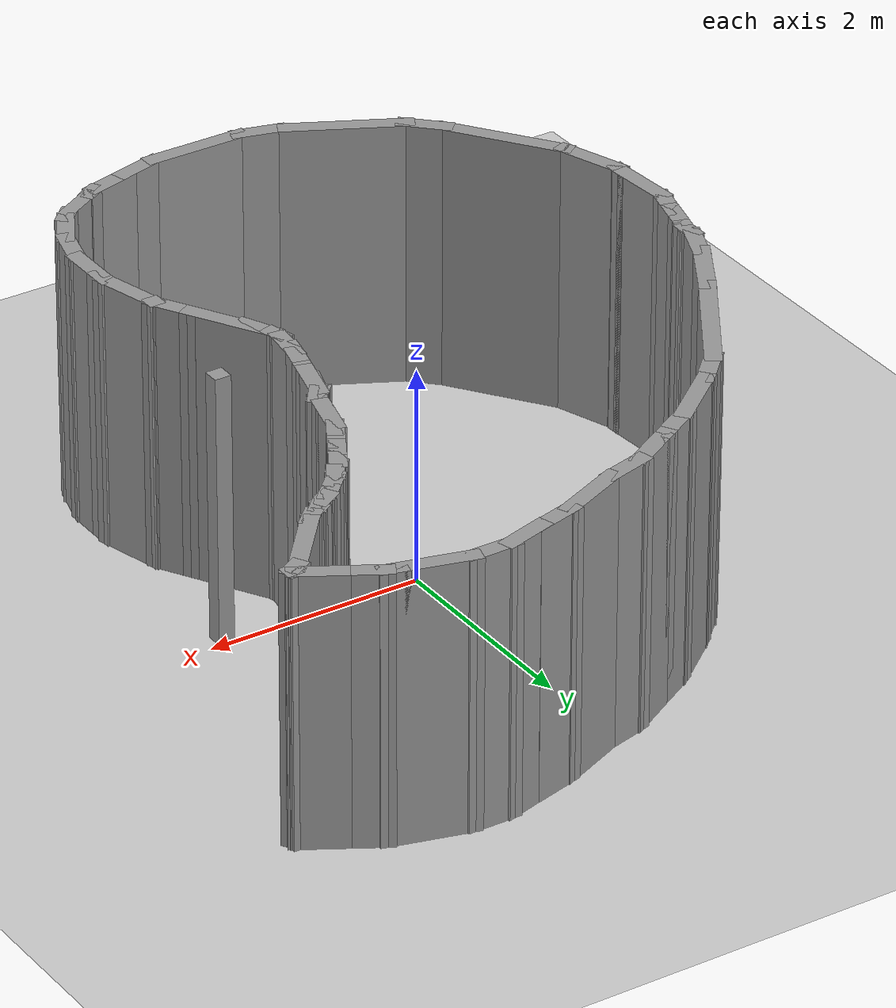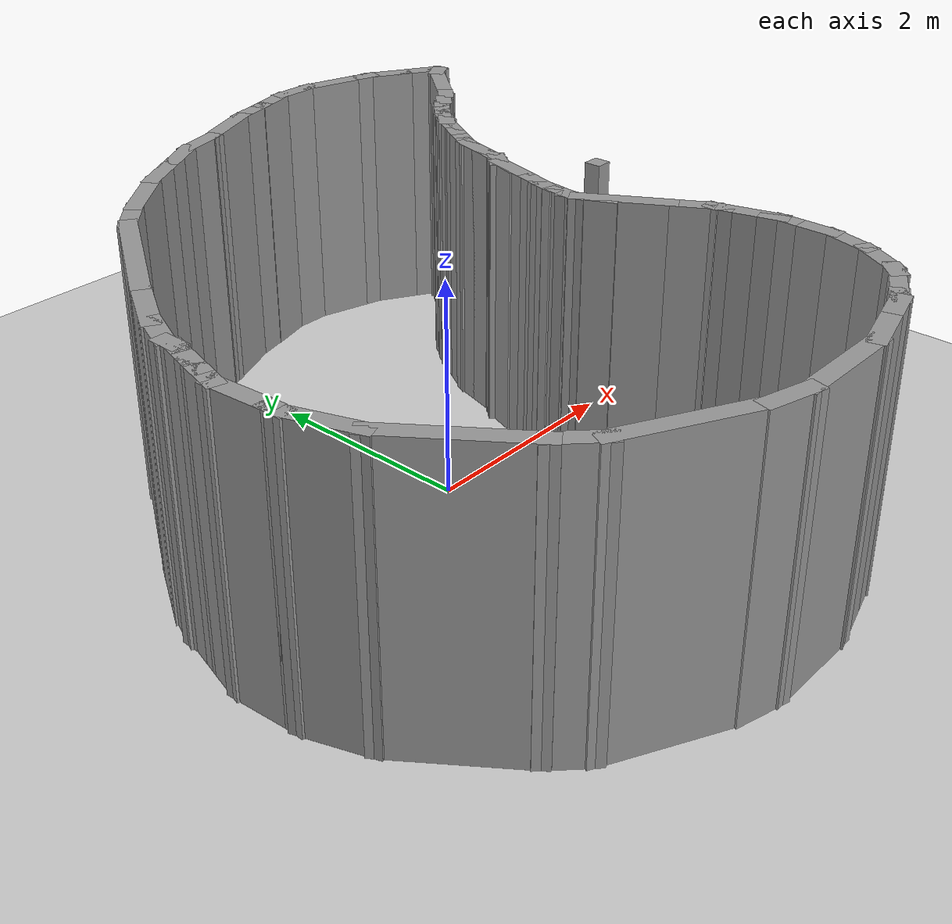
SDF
<sdf version="1.7">
 <world name="default">
  <model name="ground_plane">
   <static>1</static>
   <link name="link">
    <collision name="collision">
     <geometry><plane><normal>0 0 1</normal><size>100 100</size></plane></geometry>
     <surface>
      <contact><collide_bitmask>65535</collide_bitmask></contact>
      <friction><ode><mu>100</mu><mu2>50</mu2></ode></friction>
     </surface>
    </collision>
    <visual name="visual">
     <cast_shadows>0</cast_shadows>
     <geometry><plane><normal>0 0 1</normal><size>100 100</size></plane></geometry>
     <material>
      <script><uri>file://media/materials/scripts/gazebo.material</uri><name>Gazebo/Grey</name></script>
     </material>
    </visual>
   </link>
  </model>
  <model name="spool3">
   <pose>0.049449 -0.068809 0 0 -0 0</pose>
   <link name="Wall_424">
    <collision name="Wall_424_Collision">
     <geometry><box><size>0.15 0.15 2.5</size></box></geometry>
     <pose>0 0 1.25 0 -0 0</pose>
    </collision>
    <visual name="Wall_424_Visual">
     <pose>0 0 1.25 0 -0 0</pose>
     <geometry><box><size>0.15 0.15 2.5</size></box></geometry>
     <material>
      <script><uri>file://media/materials/scripts/gazebo.material</uri><name>Gazebo/Grey</name></script>
      <ambient>1 1 1 1</ambient>
     </material>
     <meta><layer>0</layer></meta>
    </visual>
    <pose>2.89913 2.86094 0 0 -0 0</pose>
   </link>
   <link name="Wall_425">
    <collision name="Wall_425_Collision">
     <geometry><box><size>0.25 0.15 2.5</size></box></geometry>
     <pose>0 0 1.25 0 -0 0</pose>
    </collision>
    <visual name="Wall_425_Visual">
     <pose>0 0 1.25 0 -0 0</pose>
     <geometry><box><size>0.25 0.15 2.5</size></box></geometry>
     <material>
      <script><uri>file://media/materials/scripts/gazebo.material</uri><name>Gazebo/Grey</name></script>
      <ambient>1 1 1 1</ambient>
     </material>
     <meta><layer>0</layer></meta>
    </visual>
    <pose>2.85583 2.83232 0 0 -0 -2.61799</pose>
   </link>
   <link name="Wall_426">
    <collision name="Wall_426_Collision">
     <geometry><box><size>0.829218 0.15 2.5</size></box></geometry>
     <pose>0 0 1.25 0 -0 0</pose>
    </collision>
    <visual name="Wall_426_Visual">
     <pose>0 0 1.25 0 -0 0</pose>
     <geometry><box><size>0.829218 0.15 2.5</size></box></geometry>
     <material>
      <script><uri>file://media/materials/scripts/gazebo.material</uri><name>Gazebo/Grey</name></script>
      <ambient>1 1 1 1</ambient>
     </material>
     <meta><layer>0</layer></meta>
    </visual>
    <pose>2.594 2.5507 0 0 -0 -2.26929</pose>
   </link>
   <link name="Wall_427">
    <collision name="Wall_427_Collision">
     <geometry><box><size>0.25 0.15 2.5</size></box></geometry>
     <pose>0 0 1.25 0 -0 0</pose>
    </collision>
    <visual name="Wall_427_Visual">
     <pose>0 0 1.25 0 -0 0</pose>
     <geometry><box><size>0.25 0.15 2.5</size></box></geometry>
     <material>
      <script><uri>file://media/materials/scripts/gazebo.material</uri><name>Gazebo/Grey</name></script>
      <ambient>1 1 1 1</ambient>
     </material>
     <meta><layer>0</layer></meta>
    </visual>
    <pose>2.34012 2.25511 0 0 -0 -2.35619</pose>
   </link>
   <link name="Wall_428">
    <collision name="Wall_428_Collision">
     <geometry><box><size>0.25 0.15 2.5</size></box></geometry>
     <pose>0 0 1.25 0 -0 0</pose>
    </collision>
    <visual name="Wall_428_Visual">
     <pose>0 0 1.25 0 -0 0</pose>
     <geometry><box><size>0.25 0.15 2.5</size></box></geometry>
     <material>
      <script><uri>file://media/materials/scripts/gazebo.material</uri><name>Gazebo/Grey</name></script>
      <ambient>1 1 1 1</ambient>
     </material>
     <meta><layer>0</layer></meta>
    </visual>
    <pose>2.26146 2.19475 0 0 -0 -2.61799</pose>
   </link>
   <link name="Wall_429">
    <collision name="Wall_429_Collision">
     <geometry><box><size>0.25 0.15 2.5</size></box></geometry>
     <pose>0 0 1.25 0 -0 0</pose>
    </collision>
    <visual name="Wall_429_Visual">
     <pose>0 0 1.25 0 -0 0</pose>
     <geometry><box><size>0.25 0.15 2.5</size></box></geometry>
     <material>
      <script><uri>file://media/materials/scripts/gazebo.material</uri><name>Gazebo/Grey</name></script>
      <ambient>1 1 1 1</ambient>
     </material>
     <meta><layer>0</layer></meta>
    </visual>
    <pose>2.18281 2.1344 0 0 -0 -2.35619</pose>
   </link>
   <link name="Wall_430">
    <collision name="Wall_430_Collision">
     <geometry><box><size>0.25 0.15 2.5</size></box></geometry>
     <pose>0 0 1.25 0 -0 0</pose>
    </collision>
    <visual name="Wall_430_Visual">
     <pose>0 0 1.25 0 -0 0</pose>
     <geometry><box><size>0.25 0.15 2.5</size></box></geometry>
     <material>
      <script><uri>file://media/materials/scripts/gazebo.material</uri><name>Gazebo/Grey</name></script>
      <ambient>1 1 1 1</ambient>
     </material>
     <meta><layer>0</layer></meta>
    </visual>
    <pose>2.10415 2.07404 0 0 -0 -2.61799</pose>
   </link>
   <link name="Wall_431">
    <collision name="Wall_431_Collision">
     <geometry><box><size>0.25 0.15 2.5</size></box></geometry>
     <pose>0 0 1.25 0 -0 0</pose>
    </collision>
    <visual name="Wall_431_Visual">
     <pose>0 0 1.25 0 -0 0</pose>
     <geometry><box><size>0.25 0.15 2.5</size></box></geometry>
     <material>
      <script><uri>file://media/materials/scripts/gazebo.material</uri><name>Gazebo/Grey</name></script>
      <ambient>1 1 1 1</ambient>
     </material>
     <meta><layer>0</layer></meta>
    </visual>
    <pose>2.02549 2.01369 0 0 -0 -2.35619</pose>
   </link>
   <link name="Wall_432">
    <collision name="Wall_432_Collision">
     <geometry><box><size>0.25 0.15 2.5</size></box></geometry>
     <pose>0 0 1.25 0 -0 0</pose>
    </collision>
    <visual name="Wall_432_Visual">
     <pose>0 0 1.25 0 -0 0</pose>
     <geometry><box><size>0.25 0.15 2.5</size></box></geometry>
     <material>
      <script><uri>file://media/materials/scripts/gazebo.material</uri><name>Gazebo/Grey</name></script>
      <ambient>1 1 1 1</ambient>
     </material>
     <meta><layer>0</layer></meta>
    </visual>
    <pose>1.95478 1.94298 0 0 -0 -2.35619</pose>
   </link>
   <link name="Wall_433">
    <collision name="Wall_433_Collision">
     <geometry><box><size>0.25 0.15 2.5</size></box></geometry>
     <pose>0 0 1.25 0 -0 0</pose>
    </collision>
    <visual name="Wall_433_Visual">
     <pose>0 0 1.25 0 -0 0</pose>
     <geometry><box><size>0.25 0.15 2.5</size></box></geometry>
     <material>
      <script><uri>file://media/materials/scripts/gazebo.material</uri><name>Gazebo/Grey</name></script>
      <ambient>1 1 1 1</ambient>
     </material>
     <meta><layer>0</layer></meta>
    </visual>
    <pose>1.88407 1.87227 0 0 -0 -2.35619</pose>
   </link>
   <link name="Wall_434">
    <collision name="Wall_434_Collision">
     <geometry><box><size>0.25 0.15 2.5</size></box></geometry>
     <pose>0 0 1.25 0 -0 0</pose>
    </collision>
    <visual name="Wall_434_Visual">
     <pose>0 0 1.25 0 -0 0</pose>
     <geometry><box><size>0.25 0.15 2.5</size></box></geometry>
     <material>
      <script><uri>file://media/materials/scripts/gazebo.material</uri><name>Gazebo/Grey</name></script>
      <ambient>1 1 1 1</ambient>
     </material>
     <meta><layer>0</layer></meta>
    </visual>
    <pose>1.82372 1.79361 0 0 -0 -2.0944</pose>
   </link>
   <link name="Wall_435">
    <collision name="Wall_435_Collision">
     <geometry><box><size>0.25 0.15 2.5</size></box></geometry>
     <pose>0 0 1.25 0 -0 0</pose>
    </collision>
    <visual name="Wall_435_Visual">
     <pose>0 0 1.25 0 -0 0</pose>
     <geometry><box><size>0.25 0.15 2.5</size></box></geometry>
     <material>
      <script><uri>file://media/materials/scripts/gazebo.material</uri><name>Gazebo/Grey</name></script>
      <ambient>1 1 1 1</ambient>
     </material>
     <meta><layer>0</layer></meta>
    </visual>
    <pose>1.76336 1.71495 0 0 -0 -2.35619</pose>
   </link>
   <link name="Wall_436">
    <collision name="Wall_436_Collision">
     <geometry><box><size>0.25 0.15 2.5</size></box></geometry>
     <pose>0 0 1.25 0 -0 0</pose>
    </collision>
    <visual name="Wall_436_Visual">
     <pose>0 0 1.25 0 -0 0</pose>
     <geometry><box><size>0.25 0.15 2.5</size></box></geometry>
     <material>
      <script><uri>file://media/materials/scripts/gazebo.material</uri><name>Gazebo/Grey</name></script>
      <ambient>1 1 1 1</ambient>
     </material>
     <meta><layer>0</layer></meta>
    </visual>
    <pose>1.70301 1.6363 0 0 -0 -2.0944</pose>
   </link>
   <link name="Wall_437">
    <collision name="Wall_437_Collision">
     <geometry><box><size>0.25 0.15 2.5</size></box></geometry>
     <pose>0 0 1.25 0 -0 0</pose>
    </collision>
    <visual name="Wall_437_Visual">
     <pose>0 0 1.25 0 -0 0</pose>
     <geometry><box><size>0.25 0.15 2.5</size></box></geometry>
     <material>
      <script><uri>file://media/materials/scripts/gazebo.material</uri><name>Gazebo/Grey</name></script>
      <ambient>1 1 1 1</ambient>
     </material>
     <meta><layer>0</layer></meta>
    </visual>
    <pose>1.65301 1.54969 0 0 -0 -2.0944</pose>
   </link>
   <link name="Wall_438">
    <collision name="Wall_438_Collision">
     <geometry><box><size>0.25 0.15 2.5</size></box></geometry>
     <pose>0 0 1.25 0 -0 0</pose>
    </collision>
    <visual name="Wall_438_Visual">
     <pose>0 0 1.25 0 -0 0</pose>
     <geometry><box><size>0.25 0.15 2.5</size></box></geometry>
     <material>
      <script><uri>file://media/materials/scripts/gazebo.material</uri><name>Gazebo/Grey</name></script>
      <ambient>1 1 1 1</ambient>
     </material>
     <meta><layer>0</layer></meta>
    </visual>
    <pose>1.60301 1.46309 0 0 -0 -2.0944</pose>
   </link>
   <link name="Wall_439">
    <collision name="Wall_439_Collision">
     <geometry><box><size>0.25 0.15 2.5</size></box></geometry>
     <pose>0 0 1.25 0 -0 0</pose>
    </collision>
    <visual name="Wall_439_Visual">
     <pose>0 0 1.25 0 -0 0</pose>
     <geometry><box><size>0.25 0.15 2.5</size></box></geometry>
     <material>
      <script><uri>file://media/materials/scripts/gazebo.material</uri><name>Gazebo/Grey</name></script>
      <ambient>1 1 1 1</ambient>
     </material>
     <meta><layer>0</layer></meta>
    </visual>
    <pose>1.55301 1.37649 0 0 -0 -2.0944</pose>
   </link>
   <link name="Wall_440">
    <collision name="Wall_440_Collision">
     <geometry><box><size>0.25 0.15 2.5</size></box></geometry>
     <pose>0 0 1.25 0 -0 0</pose>
    </collision>
    <visual name="Wall_440_Visual">
     <pose>0 0 1.25 0 -0 0</pose>
     <geometry><box><size>0.25 0.15 2.5</size></box></geometry>
     <material>
      <script><uri>file://media/materials/scripts/gazebo.material</uri><name>Gazebo/Grey</name></script>
      <ambient>1 1 1 1</ambient>
     </material>
     <meta><layer>0</layer></meta>
    </visual>
    <pose>1.50301 1.28989 0 0 -0 -2.0944</pose>
   </link>
   <link name="Wall_441">
    <collision name="Wall_441_Collision">
     <geometry><box><size>0.25 0.15 2.5</size></box></geometry>
     <pose>0 0 1.25 0 -0 0</pose>
    </collision>
    <visual name="Wall_441_Visual">
     <pose>0 0 1.25 0 -0 0</pose>
     <geometry><box><size>0.25 0.15 2.5</size></box></geometry>
     <material>
      <script><uri>file://media/materials/scripts/gazebo.material</uri><name>Gazebo/Grey</name></script>
      <ambient>1 1 1 1</ambient>
     </material>
     <meta><layer>0</layer></meta>
    </visual>
    <pose>1.45301 1.20328 0 0 -0 -2.0944</pose>
   </link>
   <link name="Wall_442">
    <collision name="Wall_442_Collision">
     <geometry><box><size>0.5 0.15 2.5</size></box></geometry>
     <pose>0 0 1.25 0 -0 0</pose>
    </collision>
    <visual name="Wall_442_Visual">
     <pose>0 0 1.25 0 -0 0</pose>
     <geometry><box><size>0.5 0.15 2.5</size></box></geometry>
     <material>
      <script><uri>file://media/materials/scripts/gazebo.material</uri><name>Gazebo/Grey</name></script>
      <ambient>1 1 1 1</ambient>
     </material>
     <meta><layer>0</layer></meta>
    </visual>
    <pose>1.38271 0.990946 0 0 -0 -1.8326</pose>
   </link>
   <link name="Wall_443">
    <collision name="Wall_443_Collision">
     <geometry><box><size>0.5 0.15 2.5</size></box></geometry>
     <pose>0 0 1.25 0 -0 0</pose>
    </collision>
    <visual name="Wall_443_Visual">
     <pose>0 0 1.25 0 -0 0</pose>
     <geometry><box><size>0.5 0.15 2.5</size></box></geometry>
     <material>
      <script><uri>file://media/materials/scripts/gazebo.material</uri><name>Gazebo/Grey</name></script>
      <ambient>1 1 1 1</ambient>
     </material>
     <meta><layer>0</layer></meta>
    </visual>
    <pose>1.38271 0.990946 0 0 -0 1.309</pose>
   </link>
   <link name="Wall_444">
    <collision name="Wall_444_Collision">
     <geometry><box><size>0.5 0.15 2.5</size></box></geometry>
     <pose>0 0 1.25 0 -0 0</pose>
    </collision>
    <visual name="Wall_444_Visual">
     <pose>0 0 1.25 0 -0 0</pose>
     <geometry><box><size>0.5 0.15 2.5</size></box></geometry>
     <material>
      <script><uri>file://media/materials/scripts/gazebo.material</uri><name>Gazebo/Grey</name></script>
      <ambient>1 1 1 1</ambient>
     </material>
     <meta><layer>0</layer></meta>
    </visual>
    <pose>1.38271 0.990946 0 0 -0 -1.8326</pose>
   </link>
   <link name="Wall_445">
    <collision name="Wall_445_Collision">
     <geometry><box><size>0.25 0.15 2.5</size></box></geometry>
     <pose>0 0 1.25 0 -0 0</pose>
    </collision>
    <visual name="Wall_445_Visual">
     <pose>0 0 1.25 0 -0 0</pose>
     <geometry><box><size>0.25 0.15 2.5</size></box></geometry>
     <material>
      <script><uri>file://media/materials/scripts/gazebo.material</uri><name>Gazebo/Grey</name></script>
      <ambient>1 1 1 1</ambient>
     </material>
     <meta><layer>0</layer></meta>
    </visual>
    <pose>1.32448 0.773612 0 0 -0 -1.8326</pose>
   </link>
   <link name="Wall_446">
    <collision name="Wall_446_Collision">
     <geometry><box><size>0.290924 0.15 2.5</size></box></geometry>
     <pose>0 0 1.25 0 -0 0</pose>
    </collision>
    <visual name="Wall_446_Visual">
     <pose>0 0 1.25 0 -0 0</pose>
     <geometry><box><size>0.290924 0.15 2.5</size></box></geometry>
     <material>
      <script><uri>file://media/materials/scripts/gazebo.material</uri><name>Gazebo/Grey</name></script>
      <ambient>1 1 1 1</ambient>
     </material>
     <meta><layer>0</layer></meta>
    </visual>
    <pose>1.26544 0.672025 0 0 -0 -2.28393</pose>
   </link>
   <link name="Wall_447">
    <collision name="Wall_447_Collision">
     <geometry><box><size>0.3 0.15 2.5</size></box></geometry>
     <pose>0 0 1.25 0 -0 0</pose>
    </collision>
    <visual name="Wall_447_Visual">
     <pose>0 0 1.25 0 -0 0</pose>
     <geometry><box><size>0.3 0.15 2.5</size></box></geometry>
     <material>
      <script><uri>file://media/materials/scripts/gazebo.material</uri><name>Gazebo/Grey</name></script>
      <ambient>1 1 1 1</ambient>
     </material>
     <meta><layer>0</layer></meta>
    </visual>
    <pose>1.27238 0.671766 0 0 -0 0.785398</pose>
   </link>
   <link name="Wall_448">
    <collision name="Wall_448_Collision">
     <geometry><box><size>0.271459 0.15 2.5</size></box></geometry>
     <pose>0 0 1.25 0 -0 0</pose>
    </collision>
    <visual name="Wall_448_Visual">
     <pose>0 0 1.25 0 -0 0</pose>
     <geometry><box><size>0.271459 0.15 2.5</size></box></geometry>
     <material>
      <script><uri>file://media/materials/scripts/gazebo.material</uri><name>Gazebo/Grey</name></script>
      <ambient>1 1 1 1</ambient>
     </material>
     <meta><layer>0</layer></meta>
    </visual>
    <pose>1.28909 0.676128 0 0 -0 -2.21188</pose>
   </link>
   <link name="Wall_449">
    <collision name="Wall_449_Collision">
     <geometry><box><size>0.374065 0.15 2.5</size></box></geometry>
     <pose>0 0 1.25 0 -0 0</pose>
    </collision>
    <visual name="Wall_449_Visual">
     <pose>0 0 1.25 0 -0 0</pose>
     <geometry><box><size>0.374065 0.15 2.5</size></box></geometry>
     <material>
      <script><uri>file://media/materials/scripts/gazebo.material</uri><name>Gazebo/Grey</name></script>
      <ambient>1 1 1 1</ambient>
     </material>
     <meta><layer>0</layer></meta>
    </visual>
    <pose>1.21102 0.518038 0 0 -0 -1.89287</pose>
   </link>
   <link name="Wall_454">
    <collision name="Wall_454_Collision">
     <geometry><box><size>0.15 0.15 2.5</size></box></geometry>
     <pose>0 0 1.25 0 -0 0</pose>
    </collision>
    <visual name="Wall_454_Visual">
     <pose>0 0 1.25 0 -0 0</pose>
     <geometry><box><size>0.15 0.15 2.5</size></box></geometry>
     <material>
      <script><uri>file://media/materials/scripts/gazebo.material</uri><name>Gazebo/Grey</name></script>
      <ambient>1 1 1 1</ambient>
     </material>
     <meta><layer>0</layer></meta>
    </visual>
    <pose>1.78692 -0.022189 0 0 -0 0</pose>
   </link>
   <link name="Wall_458">
    <collision name="Wall_458_Collision">
     <geometry><box><size>0.41268 0.15 2.5</size></box></geometry>
     <pose>0 0 1.25 0 -0 0</pose>
    </collision>
    <visual name="Wall_458_Visual">
     <pose>0 0 1.25 0 -0 0</pose>
     <geometry><box><size>0.41268 0.15 2.5</size></box></geometry>
     <material>
      <script><uri>file://media/materials/scripts/gazebo.material</uri><name>Gazebo/Grey</name></script>
      <ambient>1 1 1 1</ambient>
     </material>
     <meta><layer>0</layer></meta>
    </visual>
    <pose>1.11426 -0.498827 0 0 -0 2.00946</pose>
   </link>
   <link name="Wall_459">
    <collision name="Wall_459_Collision">
     <geometry><box><size>0.891691 0.15 2.5</size></box></geometry>
     <pose>0 0 1.25 0 -0 0</pose>
    </collision>
    <visual name="Wall_459_Visual">
     <pose>0 0 1.25 0 -0 0</pose>
     <geometry><box><size>0.891691 0.15 2.5</size></box></geometry>
     <material>
      <script><uri>file://media/materials/scripts/gazebo.material</uri><name>Gazebo/Grey</name></script>
      <ambient>1 1 1 1</ambient>
     </material>
     <meta><layer>0</layer></meta>
    </visual>
    <pose>1.24574 -0.700011 0 0 -0 -1.04144</pose>
   </link>
   <link name="Wall_460">
    <collision name="Wall_460_Collision">
     <geometry><box><size>0.5 0.15 2.5</size></box></geometry>
     <pose>0 0 1.25 0 -0 0</pose>
    </collision>
    <visual name="Wall_460_Visual">
     <pose>0 0 1.25 0 -0 0</pose>
     <geometry><box><size>0.5 0.15 2.5</size></box></geometry>
     <material>
      <script><uri>file://media/materials/scripts/gazebo.material</uri><name>Gazebo/Grey</name></script>
      <ambient>1 1 1 1</ambient>
     </material>
     <meta><layer>0</layer></meta>
    </visual>
    <pose>1.52051 -1.17165 0 0 -0 -1.0472</pose>
   </link>
   <link name="Wall_461">
    <collision name="Wall_461_Collision">
     <geometry><box><size>0.15 0.15 2.5</size></box></geometry>
     <pose>0 0 1.25 0 -0 0</pose>
    </collision>
    <visual name="Wall_461_Visual">
     <pose>0 0 1.25 0 -0 0</pose>
     <geometry><box><size>0.15 0.15 2.5</size></box></geometry>
     <material>
      <script><uri>file://media/materials/scripts/gazebo.material</uri><name>Gazebo/Grey</name></script>
      <ambient>1 1 1 1</ambient>
     </material>
     <meta><layer>0</layer></meta>
    </visual>
    <pose>1.60801 -1.32321 0 0 -0 0</pose>
   </link>
   <link name="Wall_462">
    <collision name="Wall_462_Collision">
     <geometry><box><size>0.25 0.15 2.5</size></box></geometry>
     <pose>0 0 1.25 0 -0 0</pose>
    </collision>
    <visual name="Wall_462_Visual">
     <pose>0 0 1.25 0 -0 0</pose>
     <geometry><box><size>0.25 0.15 2.5</size></box></geometry>
     <material>
      <script><uri>file://media/materials/scripts/gazebo.material</uri><name>Gazebo/Grey</name></script>
      <ambient>1 1 1 1</ambient>
     </material>
     <meta><layer>0</layer></meta>
    </visual>
    <pose>1.62095 -1.3715 0 0 -0 -1.309</pose>
   </link>
   <link name="Wall_463">
    <collision name="Wall_463_Collision">
     <geometry><box><size>0.5 0.15 2.5</size></box></geometry>
     <pose>0 0 1.25 0 -0 0</pose>
    </collision>
    <visual name="Wall_463_Visual">
     <pose>0 0 1.25 0 -0 0</pose>
     <geometry><box><size>0.5 0.15 2.5</size></box></geometry>
     <material>
      <script><uri>file://media/materials/scripts/gazebo.material</uri><name>Gazebo/Grey</name></script>
      <ambient>1 1 1 1</ambient>
     </material>
     <meta><layer>0</layer></meta>
    </visual>
    <pose>1.67919 -1.58884 0 0 -0 -1.309</pose>
   </link>
   <link name="Wall_464">
    <collision name="Wall_464_Collision">
     <geometry><box><size>0.25 0.15 2.5</size></box></geometry>
     <pose>0 0 1.25 0 -0 0</pose>
    </collision>
    <visual name="Wall_464_Visual">
     <pose>0 0 1.25 0 -0 0</pose>
     <geometry><box><size>0.25 0.15 2.5</size></box></geometry>
     <material>
      <script><uri>file://media/materials/scripts/gazebo.material</uri><name>Gazebo/Grey</name></script>
      <ambient>1 1 1 1</ambient>
     </material>
     <meta><layer>0</layer></meta>
    </visual>
    <pose>1.73742 -1.80617 0 0 -0 -1.309</pose>
   </link>
   <link name="Wall_465">
    <collision name="Wall_465_Collision">
     <geometry><box><size>0.25 0.15 2.5</size></box></geometry>
     <pose>0 0 1.25 0 -0 0</pose>
    </collision>
    <visual name="Wall_465_Visual">
     <pose>0 0 1.25 0 -0 0</pose>
     <geometry><box><size>0.25 0.15 2.5</size></box></geometry>
     <material>
      <script><uri>file://media/materials/scripts/gazebo.material</uri><name>Gazebo/Grey</name></script>
      <ambient>1 1 1 1</ambient>
     </material>
     <meta><layer>0</layer></meta>
    </visual>
    <pose>1.75036 -1.90447 0 0 -0 -1.5708</pose>
   </link>
   <link name="Wall_466">
    <collision name="Wall_466_Collision">
     <geometry><box><size>0.5 0.15 2.5</size></box></geometry>
     <pose>0 0 1.25 0 -0 0</pose>
    </collision>
    <visual name="Wall_466_Visual">
     <pose>0 0 1.25 0 -0 0</pose>
     <geometry><box><size>0.5 0.15 2.5</size></box></geometry>
     <material>
      <script><uri>file://media/materials/scripts/gazebo.material</uri><name>Gazebo/Grey</name></script>
      <ambient>1 1 1 1</ambient>
     </material>
     <meta><layer>0</layer></meta>
    </visual>
    <pose>1.75036 -2.12947 0 0 -0 -1.5708</pose>
   </link>
   <link name="Wall_467">
    <collision name="Wall_467_Collision">
     <geometry><box><size>0.5 0.15 2.5</size></box></geometry>
     <pose>0 0 1.25 0 -0 0</pose>
    </collision>
    <visual name="Wall_467_Visual">
     <pose>0 0 1.25 0 -0 0</pose>
     <geometry><box><size>0.5 0.15 2.5</size></box></geometry>
     <material>
      <script><uri>file://media/materials/scripts/gazebo.material</uri><name>Gazebo/Grey</name></script>
      <ambient>1 1 1 1</ambient>
     </material>
     <meta><layer>0</layer></meta>
    </visual>
    <pose>1.70507 -2.4735 0 0 -0 -1.8326</pose>
   </link>
   <link name="Wall_468">
    <collision name="Wall_468_Collision">
     <geometry><box><size>0.5 0.15 2.5</size></box></geometry>
     <pose>0 0 1.25 0 -0 0</pose>
    </collision>
    <visual name="Wall_468_Visual">
     <pose>0 0 1.25 0 -0 0</pose>
     <geometry><box><size>0.5 0.15 2.5</size></box></geometry>
     <material>
      <script><uri>file://media/materials/scripts/gazebo.material</uri><name>Gazebo/Grey</name></script>
      <ambient>1 1 1 1</ambient>
     </material>
     <meta><layer>0</layer></meta>
    </visual>
    <pose>1.57227 -2.7941 0 0 -0 -2.0944</pose>
   </link>
   <link name="Wall_469">
    <collision name="Wall_469_Collision">
     <geometry><box><size>0.25 0.15 2.5</size></box></geometry>
     <pose>0 0 1.25 0 -0 0</pose>
    </collision>
    <visual name="Wall_469_Visual">
     <pose>0 0 1.25 0 -0 0</pose>
     <geometry><box><size>0.25 0.15 2.5</size></box></geometry>
     <material>
      <script><uri>file://media/materials/scripts/gazebo.material</uri><name>Gazebo/Grey</name></script>
      <ambient>1 1 1 1</ambient>
     </material>
     <meta><layer>0</layer></meta>
    </visual>
    <pose>1.44938 -2.98079 0 0 -0 -2.35979</pose>
   </link>
   <link name="Wall_470">
    <collision name="Wall_470_Collision">
     <geometry><box><size>0.480151 0.13 2.5</size></box></geometry>
     <pose>0 0 1.25 0 -0 0</pose>
    </collision>
    <visual name="Wall_470_Visual">
     <pose>0 0 1.25 0 -0 0</pose>
     <geometry><box><size>0.480151 0.13 2.5</size></box></geometry>
     <material>
      <script><uri>file://media/materials/scripts/gazebo.material</uri><name>Gazebo/Grey</name></script>
      <ambient>1 1 1 1</ambient>
     </material>
     <meta><layer>0</layer></meta>
    </visual>
    <pose>1.26249 -3.10343 0 0 -0 -2.61784</pose>
   </link>
   <link name="Wall_471">
    <collision name="Wall_471_Collision">
     <geometry><box><size>0.25 0.15 2.5</size></box></geometry>
     <pose>0 0 1.25 0 -0 0</pose>
    </collision>
    <visual name="Wall_471_Visual">
     <pose>0 0 1.25 0 -0 0</pose>
     <geometry><box><size>0.25 0.15 2.5</size></box></geometry>
     <material>
      <script><uri>file://media/materials/scripts/gazebo.material</uri><name>Gazebo/Grey</name></script>
      <ambient>1 1 1 1</ambient>
     </material>
     <meta><layer>0</layer></meta>
    </visual>
    <pose>1.06767 -3.21615 0 0 -0 -2.61443</pose>
   </link>
   <link name="Wall_472">
    <collision name="Wall_472_Collision">
     <geometry><box><size>0.5 0.15 2.5</size></box></geometry>
     <pose>0 0 1.25 0 -0 0</pose>
    </collision>
    <visual name="Wall_472_Visual">
     <pose>0 0 1.25 0 -0 0</pose>
     <geometry><box><size>0.5 0.15 2.5</size></box></geometry>
     <material>
      <script><uri>file://media/materials/scripts/gazebo.material</uri><name>Gazebo/Grey</name></script>
      <ambient>1 1 1 1</ambient>
     </material>
     <meta><layer>0</layer></meta>
    </visual>
    <pose>0.855315 -3.28665 0 0 -0 -2.87979</pose>
   </link>
   <link name="Wall_473">
    <collision name="Wall_473_Collision">
     <geometry><box><size>0.5 0.15 2.5</size></box></geometry>
     <pose>0 0 1.25 0 -0 0</pose>
    </collision>
    <visual name="Wall_473_Visual">
     <pose>0 0 1.25 0 -0 0</pose>
     <geometry><box><size>0.5 0.15 2.5</size></box></geometry>
     <material>
      <script><uri>file://media/materials/scripts/gazebo.material</uri><name>Gazebo/Grey</name></script>
      <ambient>1 1 1 1</ambient>
     </material>
     <meta><layer>0</layer></meta>
    </visual>
    <pose>0.517241 -3.37724 0 0 -0 -2.87979</pose>
   </link>
   <link name="Wall_474">
    <collision name="Wall_474_Collision">
     <geometry><box><size>1 0.15 2.5</size></box></geometry>
     <pose>0 0 1.25 0 -0 0</pose>
    </collision>
    <visual name="Wall_474_Visual">
     <pose>0 0 1.25 0 -0 0</pose>
     <geometry><box><size>1 0.15 2.5</size></box></geometry>
     <material>
      <script><uri>file://media/materials/scripts/gazebo.material</uri><name>Gazebo/Grey</name></script>
      <ambient>1 1 1 1</ambient>
     </material>
     <meta><layer>0</layer></meta>
    </visual>
    <pose>-0.076796 -3.42253 0 0 -0 3.14159</pose>
   </link>
   <link name="Wall_475">
    <collision name="Wall_475_Collision">
     <geometry><box><size>0.5 0.15 2.5</size></box></geometry>
     <pose>0 0 1.25 0 -0 0</pose>
    </collision>
    <visual name="Wall_475_Visual">
     <pose>0 0 1.25 0 -0 0</pose>
     <geometry><box><size>0.5 0.15 2.5</size></box></geometry>
     <material>
      <script><uri>file://media/materials/scripts/gazebo.material</uri><name>Gazebo/Grey</name></script>
      <ambient>1 1 1 1</ambient>
     </material>
     <meta><layer>0</layer></meta>
    </visual>
    <pose>-0.670833 -3.37724 0 0 -0 2.87979</pose>
   </link>
   <link name="Wall_513">
    <collision name="Wall_513_Collision">
     <geometry><box><size>1.17668 0.15 2.5</size></box></geometry>
     <pose>0 0 1.25 0 -0 0</pose>
    </collision>
    <visual name="Wall_513_Visual">
     <pose>0 0 1.25 0 -0 0</pose>
     <geometry><box><size>1.17668 0.15 2.5</size></box></geometry>
     <material>
      <script><uri>file://media/materials/scripts/gazebo.material</uri><name>Gazebo/Grey</name></script>
      <ambient>1 1 1 1</ambient>
     </material>
     <meta><layer>0</layer></meta>
    </visual>
    <pose>-1.35733 -3.0644 0 0 -0 2.66717</pose>
   </link>
   <link name="Wall_514">
    <collision name="Wall_514_Collision">
     <geometry><box><size>0.5 0.15 2.5</size></box></geometry>
     <pose>0 0 1.25 0 -0 0</pose>
    </collision>
    <visual name="Wall_514_Visual">
     <pose>0 0 1.25 0 -0 0</pose>
     <geometry><box><size>0.5 0.15 2.5</size></box></geometry>
     <material>
      <script><uri>file://media/materials/scripts/gazebo.material</uri><name>Gazebo/Grey</name></script>
      <ambient>1 1 1 1</ambient>
     </material>
     <meta><layer>0</layer></meta>
    </visual>
    <pose>-1.92942 -2.71444 0 0 -0 2.35619</pose>
   </link>
   <link name="Wall_515">
    <collision name="Wall_515_Collision">
     <geometry><box><size>1.23829 0.15 2.5</size></box></geometry>
     <pose>0 0 1.25 0 -0 0</pose>
    </collision>
    <visual name="Wall_515_Visual">
     <pose>0 0 1.25 0 -0 0</pose>
     <geometry><box><size>1.23829 0.15 2.5</size></box></geometry>
     <material>
      <script><uri>file://media/materials/scripts/gazebo.material</uri><name>Gazebo/Grey</name></script>
      <ambient>1 1 1 1</ambient>
     </material>
     <meta><layer>0</layer></meta>
    </visual>
    <pose>-2.37092 -2.14896 0 0 -0 2.19439</pose>
   </link>
   <link name="Wall_517">
    <collision name="Wall_517_Collision">
     <geometry><box><size>0.15 0.15 2.5</size></box></geometry>
     <pose>0 0 1.25 0 -0 0</pose>
    </collision>
    <visual name="Wall_517_Visual">
     <pose>0 0 1.25 0 -0 0</pose>
     <geometry><box><size>0.15 0.15 2.5</size></box></geometry>
     <material>
      <script><uri>file://media/materials/scripts/gazebo.material</uri><name>Gazebo/Grey</name></script>
      <ambient>1 1 1 1</ambient>
     </material>
     <meta><layer>0</layer></meta>
    </visual>
    <pose>-2.87268 -1.07983 0 0 -0 0</pose>
   </link>
   <link name="Wall_519">
    <collision name="Wall_519_Collision">
     <geometry><box><size>0.463786 0.15 2.5</size></box></geometry>
     <pose>0 0 1.25 0 -0 0</pose>
    </collision>
    <visual name="Wall_519_Visual">
     <pose>0 0 1.25 0 -0 0</pose>
     <geometry><box><size>0.463786 0.15 2.5</size></box></geometry>
     <material>
      <script><uri>file://media/materials/scripts/gazebo.material</uri><name>Gazebo/Grey</name></script>
      <ambient>1 1 1 1</ambient>
     </material>
     <meta><layer>0</layer></meta>
    </visual>
    <pose>-2.69479 0.234448 0 0 -0 1.1808</pose>
   </link>
   <link name="Wall_520">
    <collision name="Wall_520_Collision">
     <geometry><box><size>0.743321 0.15 2.5</size></box></geometry>
     <pose>0 0 1.25 0 -0 0</pose>
    </collision>
    <visual name="Wall_520_Visual">
     <pose>0 0 1.25 0 -0 0</pose>
     <geometry><box><size>0.743321 0.15 2.5</size></box></geometry>
     <material>
      <script><uri>file://media/materials/scripts/gazebo.material</uri><name>Gazebo/Grey</name></script>
      <ambient>1 1 1 1</ambient>
     </material>
     <meta><layer>0</layer></meta>
    </visual>
    <pose>-2.49529 0.635843 0 0 -0 1.04295</pose>
   </link>
   <link name="Wall_523">
    <collision name="Wall_523_Collision">
     <geometry><box><size>1.33351 0.15 2.5</size></box></geometry>
     <pose>0 0 1.25 0 -0 0</pose>
    </collision>
    <visual name="Wall_523_Visual">
     <pose>0 0 1.25 0 -0 0</pose>
     <geometry><box><size>1.33351 0.15 2.5</size></box></geometry>
     <material>
      <script><uri>file://media/materials/scripts/gazebo.material</uri><name>Gazebo/Grey</name></script>
      <ambient>1 1 1 1</ambient>
     </material>
     <meta><layer>0</layer></meta>
    </visual>
    <pose>-2.02763 1.39102 0 0 -0 1.00297</pose>
   </link>
   <link name="Wall_524">
    <collision name="Wall_524_Collision">
     <geometry><box><size>0.5 0.15 2.5</size></box></geometry>
     <pose>0 0 1.25 0 -0 0</pose>
    </collision>
    <visual name="Wall_524_Visual">
     <pose>0 0 1.25 0 -0 0</pose>
     <geometry><box><size>0.5 0.15 2.5</size></box></geometry>
     <material>
      <script><uri>file://media/materials/scripts/gazebo.material</uri><name>Gazebo/Grey</name></script>
      <ambient>1 1 1 1</ambient>
     </material>
     <meta><layer>0</layer></meta>
    </visual>
    <pose>-1.58564 2.01366 0 0 -0 0.785398</pose>
   </link>
   <link name="Wall_525">
    <collision name="Wall_525_Collision">
     <geometry><box><size>0.74501 0.15 2.5</size></box></geometry>
     <pose>0 0 1.25 0 -0 0</pose>
    </collision>
    <visual name="Wall_525_Visual">
     <pose>0 0 1.25 0 -0 0</pose>
     <geometry><box><size>0.74501 0.15 2.5</size></box></geometry>
     <material>
      <script><uri>file://media/materials/scripts/gazebo.material</uri><name>Gazebo/Grey</name></script>
      <ambient>1 1 1 1</ambient>
     </material>
     <meta><layer>0</layer></meta>
    </visual>
    <pose>-1.22989 2.32365 0 0 -0 0.676437</pose>
   </link>
   <link name="Wall_526">
    <collision name="Wall_526_Collision">
     <geometry><box><size>0.5 0.15 2.5</size></box></geometry>
     <pose>0 0 1.25 0 -0 0</pose>
    </collision>
    <visual name="Wall_526_Visual">
     <pose>0 0 1.25 0 -0 0</pose>
     <geometry><box><size>0.5 0.15 2.5</size></box></geometry>
     <material>
      <script><uri>file://media/materials/scripts/gazebo.material</uri><name>Gazebo/Grey</name></script>
      <ambient>1 1 1 1</ambient>
     </material>
     <meta><layer>0</layer></meta>
    </visual>
    <pose>-0.846344 2.59739 0 0 -0 0.523599</pose>
   </link>
   <link name="Wall_527">
    <collision name="Wall_527_Collision">
     <geometry><box><size>0.25 0.15 2.5</size></box></geometry>
     <pose>0 0 1.25 0 -0 0</pose>
    </collision>
    <visual name="Wall_527_Visual">
     <pose>0 0 1.25 0 -0 0</pose>
     <geometry><box><size>0.25 0.15 2.5</size></box></geometry>
     <material>
      <script><uri>file://media/materials/scripts/gazebo.material</uri><name>Gazebo/Grey</name></script>
      <ambient>1 1 1 1</ambient>
     </material>
     <meta><layer>0</layer></meta>
    </visual>
    <pose>-0.651488 2.70989 0 0 -0 0.523599</pose>
   </link>
   <link name="Wall_528">
    <collision name="Wall_528_Collision">
     <geometry><box><size>0.5 0.15 2.5</size></box></geometry>
     <pose>0 0 1.25 0 -0 0</pose>
    </collision>
    <visual name="Wall_528_Visual">
     <pose>0 0 1.25 0 -0 0</pose>
     <geometry><box><size>0.5 0.15 2.5</size></box></geometry>
     <material>
      <script><uri>file://media/materials/scripts/gazebo.material</uri><name>Gazebo/Grey</name></script>
      <ambient>1 1 1 1</ambient>
     </material>
     <meta><layer>0</layer></meta>
    </visual>
    <pose>-0.456633 2.82239 0 0 -0 0.523599</pose>
   </link>
   <link name="Wall_529">
    <collision name="Wall_529_Collision">
     <geometry><box><size>0.5 0.15 2.5</size></box></geometry>
     <pose>0 0 1.25 0 -0 0</pose>
    </collision>
    <visual name="Wall_529_Visual">
     <pose>0 0 1.25 0 -0 0</pose>
     <geometry><box><size>0.5 0.15 2.5</size></box></geometry>
     <material>
      <script><uri>file://media/materials/scripts/gazebo.material</uri><name>Gazebo/Grey</name></script>
      <ambient>1 1 1 1</ambient>
     </material>
     <meta><layer>0</layer></meta>
    </visual>
    <pose>-0.136041 2.95518 0 0 -0 0.261799</pose>
   </link>
   <link name="Wall_530">
    <collision name="Wall_530_Collision">
     <geometry><box><size>0.743355 0.15 2.5</size></box></geometry>
     <pose>0 0 1.25 0 -0 0</pose>
    </collision>
    <visual name="Wall_530_Visual">
     <pose>0 0 1.25 0 -0 0</pose>
     <geometry><box><size>0.743355 0.15 2.5</size></box></geometry>
     <material>
      <script><uri>file://media/materials/scripts/gazebo.material</uri><name>Gazebo/Grey</name></script>
      <ambient>1 1 1 1</ambient>
     </material>
     <meta><layer>0</layer></meta>
    </visual>
    <pose>0.305291 3.11826 0 0 -0 0.408256</pose>
   </link>
   <link name="Wall_531">
    <collision name="Wall_531_Collision">
     <geometry><box><size>0.5 0.15 2.5</size></box></geometry>
     <pose>0 0 1.25 0 -0 0</pose>
    </collision>
    <visual name="Wall_531_Visual">
     <pose>0 0 1.25 0 -0 0</pose>
     <geometry><box><size>0.5 0.15 2.5</size></box></geometry>
     <material>
      <script><uri>file://media/materials/scripts/gazebo.material</uri><name>Gazebo/Grey</name></script>
      <ambient>1 1 1 1</ambient>
     </material>
     <meta><layer>0</layer></meta>
    </visual>
    <pose>0.746623 3.28134 0 0 -0 0.261799</pose>
   </link>
   <link name="Wall_532">
    <collision name="Wall_532_Collision">
     <geometry><box><size>0.502232 0.15 2.5</size></box></geometry>
     <pose>0 0 1.25 0 -0 0</pose>
    </collision>
    <visual name="Wall_532_Visual">
     <pose>0 0 1.25 0 -0 0</pose>
     <geometry><box><size>0.502232 0.15 2.5</size></box></geometry>
     <material>
      <script><uri>file://media/materials/scripts/gazebo.material</uri><name>Gazebo/Grey</name></script>
      <ambient>1 1 1 1</ambient>
     </material>
     <meta><layer>0</layer></meta>
    </visual>
    <pose>1.0847 3.37192 0 0 -0 0.284493</pose>
   </link>
   <link name="Wall_533">
    <collision name="Wall_533_Collision">
     <geometry><box><size>0.5 0.15 2.5</size></box></geometry>
     <pose>0 0 1.25 0 -0 0</pose>
    </collision>
    <visual name="Wall_533_Visual">
     <pose>0 0 1.25 0 -0 0</pose>
     <geometry><box><size>0.5 0.15 2.5</size></box></geometry>
     <material>
      <script><uri>file://media/materials/scripts/gazebo.material</uri><name>Gazebo/Grey</name></script>
      <ambient>1 1 1 1</ambient>
     </material>
     <meta><layer>0</layer></meta>
    </visual>
    <pose>1.42873 3.42136 0 0 -0 0</pose>
   </link>
   <link name="Wall_534">
    <collision name="Wall_534_Collision">
     <geometry><box><size>0.75 0.15 2.5</size></box></geometry>
     <pose>0 0 1.25 0 -0 0</pose>
    </collision>
    <visual name="Wall_534_Visual">
     <pose>0 0 1.25 0 -0 0</pose>
     <geometry><box><size>0.75 0.15 2.5</size></box></geometry>
     <material>
      <script><uri>file://media/materials/scripts/gazebo.material</uri><name>Gazebo/Grey</name></script>
      <ambient>1 1 1 1</ambient>
     </material>
     <meta><layer>0</layer></meta>
    </visual>
    <pose>1.89351 3.34371 0 0 -0 -0.261799</pose>
   </link>
   <link name="Wall_535">
    <collision name="Wall_535_Collision">
     <geometry><box><size>0.25 0.15 2.5</size></box></geometry>
     <pose>0 0 1.25 0 -0 0</pose>
    </collision>
    <visual name="Wall_535_Visual">
     <pose>0 0 1.25 0 -0 0</pose>
     <geometry><box><size>0.25 0.15 2.5</size></box></geometry>
     <material>
      <script><uri>file://media/materials/scripts/gazebo.material</uri><name>Gazebo/Grey</name></script>
      <ambient>1 1 1 1</ambient>
     </material>
     <meta><layer>0</layer></meta>
    </visual>
    <pose>2.23159 3.25312 0 0 -0 -0.261799</pose>
   </link>
   <link name="Wall_536">
    <collision name="Wall_536_Collision">
     <geometry><box><size>0.5 0.15 2.5</size></box></geometry>
     <pose>0 0 1.25 0 -0 0</pose>
    </collision>
    <visual name="Wall_536_Visual">
     <pose>0 0 1.25 0 -0 0</pose>
     <geometry><box><size>0.5 0.15 2.5</size></box></geometry>
     <material>
      <script><uri>file://media/materials/scripts/gazebo.material</uri><name>Gazebo/Grey</name></script>
      <ambient>1 1 1 1</ambient>
     </material>
     <meta><layer>0</layer></meta>
    </visual>
    <pose>2.43144 3.15268 0 0 -0 -0.523599</pose>
   </link>
   <link name="Wall_537">
    <collision name="Wall_537_Collision">
     <geometry><box><size>0.5 0.15 2.5</size></box></geometry>
     <pose>0 0 1.25 0 -0 0</pose>
    </collision>
    <visual name="Wall_537_Visual">
     <pose>0 0 1.25 0 -0 0</pose>
     <geometry><box><size>0.5 0.15 2.5</size></box></geometry>
     <material>
      <script><uri>file://media/materials/scripts/gazebo.material</uri><name>Gazebo/Grey</name></script>
      <ambient>1 1 1 1</ambient>
     </material>
     <meta><layer>0</layer></meta>
    </visual>
    <pose>2.73455 2.97768 0 0 -0 -0.523599</pose>
   </link>
   <link name="Wall_538">
    <collision name="Wall_538_Collision">
     <geometry><box><size>0.15 0.15 2.5</size></box></geometry>
     <pose>0 0 1.25 0 -0 0</pose>
    </collision>
    <visual name="Wall_538_Visual">
     <pose>0 0 1.25 0 -0 0</pose>
     <geometry><box><size>0.15 0.15 2.5</size></box></geometry>
     <material>
      <script><uri>file://media/materials/scripts/gazebo.material</uri><name>Gazebo/Grey</name></script>
      <ambient>1 1 1 1</ambient>
     </material>
     <meta><layer>0</layer></meta>
    </visual>
    <pose>2.8861 2.89018 0 0 -0 0</pose>
   </link>
   <link name="Wall_541">
    <collision name="Wall_541_Collision">
     <geometry><box><size>0.5 0.15 2.5</size></box></geometry>
     <pose>0 0 1.25 0 -0 0</pose>
    </collision>
    <visual name="Wall_541_Visual">
     <pose>0 0 1.25 0 -0 0</pose>
     <geometry><box><size>0.5 0.15 2.5</size></box></geometry>
     <material>
      <script><uri>file://media/materials/scripts/gazebo.material</uri><name>Gazebo/Grey</name></script>
      <ambient>1 1 1 1</ambient>
     </material>
     <meta><layer>0</layer></meta>
    </visual>
    <pose>1.20118 0.455273 0 0 -0 -1.8326</pose>
   </link>
   <link name="Wall_542">
    <collision name="Wall_542_Collision">
     <geometry><box><size>0.25 0.15 2.5</size></box></geometry>
     <pose>0 0 1.25 0 -0 0</pose>
    </collision>
    <visual name="Wall_542_Visual">
     <pose>0 0 1.25 0 -0 0</pose>
     <geometry><box><size>0.25 0.15 2.5</size></box></geometry>
     <material>
      <script><uri>file://media/materials/scripts/gazebo.material</uri><name>Gazebo/Grey</name></script>
      <ambient>1 1 1 1</ambient>
     </material>
     <meta><layer>0</layer></meta>
    </visual>
    <pose>1.14295 0.23794 0 0 -0 -1.8326</pose>
   </link>
   <link name="Wall_543">
    <collision name="Wall_543_Collision">
     <geometry><box><size>0.25 0.15 2.5</size></box></geometry>
     <pose>0 0 1.25 0 -0 0</pose>
    </collision>
    <visual name="Wall_543_Visual">
     <pose>0 0 1.25 0 -0 0</pose>
     <geometry><box><size>0.25 0.15 2.5</size></box></geometry>
     <material>
      <script><uri>file://media/materials/scripts/gazebo.material</uri><name>Gazebo/Grey</name></script>
      <ambient>1 1 1 1</ambient>
     </material>
     <meta><layer>0</layer></meta>
    </visual>
    <pose>1.11707 0.141347 0 0 -0 -1.8326</pose>
   </link>
   <link name="Wall_544">
    <collision name="Wall_544_Collision">
     <geometry><box><size>0.25 0.15 2.5</size></box></geometry>
     <pose>0 0 1.25 0 -0 0</pose>
    </collision>
    <visual name="Wall_544_Visual">
     <pose>0 0 1.25 0 -0 0</pose>
     <geometry><box><size>0.25 0.15 2.5</size></box></geometry>
     <material>
      <script><uri>file://media/materials/scripts/gazebo.material</uri><name>Gazebo/Grey</name></script>
      <ambient>1 1 1 1</ambient>
     </material>
     <meta><layer>0</layer></meta>
    </visual>
    <pose>1.09119 0.044754 0 0 -0 -1.8326</pose>
   </link>
   <link name="Wall_545">
    <collision name="Wall_545_Collision">
     <geometry><box><size>0.25 0.15 2.5</size></box></geometry>
     <pose>0 0 1.25 0 -0 0</pose>
    </collision>
    <visual name="Wall_545_Visual">
     <pose>0 0 1.25 0 -0 0</pose>
     <geometry><box><size>0.25 0.15 2.5</size></box></geometry>
     <material>
      <script><uri>file://media/materials/scripts/gazebo.material</uri><name>Gazebo/Grey</name></script>
      <ambient>1 1 1 1</ambient>
     </material>
     <meta><layer>0</layer></meta>
    </visual>
    <pose>1.06738 -0.051838 0 0 -0 -1.79199</pose>
   </link>
   <link name="Wall_548">
    <collision name="Wall_548_Collision">
     <geometry><box><size>0.15 0.15 2.5</size></box></geometry>
     <pose>0 0 1.25 0 -0 0</pose>
    </collision>
    <visual name="Wall_548_Visual">
     <pose>0 0 1.25 0 -0 0</pose>
     <geometry><box><size>0.15 0.15 2.5</size></box></geometry>
     <material>
      <script><uri>file://media/materials/scripts/gazebo.material</uri><name>Gazebo/Grey</name></script>
      <ambient>1 1 1 1</ambient>
     </material>
     <meta><layer>0</layer></meta>
    </visual>
    <pose>1.04381 -0.28333 0 0 -0 0</pose>
   </link>
   <link name="Wall_551">
    <collision name="Wall_551_Collision">
     <geometry><box><size>0.25 0.15 2.5</size></box></geometry>
     <pose>0 0 1.25 0 -0 0</pose>
    </collision>
    <visual name="Wall_551_Visual">
     <pose>0 0 1.25 0 -0 0</pose>
     <geometry><box><size>0.25 0.15 2.5</size></box></geometry>
     <material>
      <script><uri>file://media/materials/scripts/gazebo.material</uri><name>Gazebo/Grey</name></script>
      <ambient>1 1 1 1</ambient>
     </material>
     <meta><layer>0</layer></meta>
    </visual>
    <pose>-2.75444 0.039336 0 0 -0 -1.5708</pose>
   </link>
   <link name="Wall_552">
    <collision name="Wall_552_Collision">
     <geometry><box><size>0.25 0.15 2.5</size></box></geometry>
     <pose>0 0 1.25 0 -0 0</pose>
    </collision>
    <visual name="Wall_552_Visual">
     <pose>0 0 1.25 0 -0 0</pose>
     <geometry><box><size>0.25 0.15 2.5</size></box></geometry>
     <material>
      <script><uri>file://media/materials/scripts/gazebo.material</uri><name>Gazebo/Grey</name></script>
      <ambient>1 1 1 1</ambient>
     </material>
     <meta><layer>0</layer></meta>
    </visual>
    <pose>-2.76738 -0.05896 0 0 -0 -1.8326</pose>
   </link>
   <link name="Wall_553">
    <collision name="Wall_553_Collision">
     <geometry><box><size>0.25 0.15 2.5</size></box></geometry>
     <pose>0 0 1.25 0 -0 0</pose>
    </collision>
    <visual name="Wall_553_Visual">
     <pose>0 0 1.25 0 -0 0</pose>
     <geometry><box><size>0.25 0.15 2.5</size></box></geometry>
     <material>
      <script><uri>file://media/materials/scripts/gazebo.material</uri><name>Gazebo/Grey</name></script>
      <ambient>1 1 1 1</ambient>
     </material>
     <meta><layer>0</layer></meta>
    </visual>
    <pose>-2.79326 -0.155553 0 0 -0 -1.8326</pose>
   </link>
   <link name="Wall_554">
    <collision name="Wall_554_Collision">
     <geometry><box><size>0.25 0.15 2.5</size></box></geometry>
     <pose>0 0 1.25 0 -0 0</pose>
    </collision>
    <visual name="Wall_554_Visual">
     <pose>0 0 1.25 0 -0 0</pose>
     <geometry><box><size>0.25 0.15 2.5</size></box></geometry>
     <material>
      <script><uri>file://media/materials/scripts/gazebo.material</uri><name>Gazebo/Grey</name></script>
      <ambient>1 1 1 1</ambient>
     </material>
     <meta><layer>0</layer></meta>
    </visual>
    <pose>-2.81914 -0.252145 0 0 -0 -1.8326</pose>
   </link>
   <link name="Wall_555">
    <collision name="Wall_555_Collision">
     <geometry><box><size>0.25 0.15 2.5</size></box></geometry>
     <pose>0 0 1.25 0 -0 0</pose>
    </collision>
    <visual name="Wall_555_Visual">
     <pose>0 0 1.25 0 -0 0</pose>
     <geometry><box><size>0.25 0.15 2.5</size></box></geometry>
     <material>
      <script><uri>file://media/materials/scripts/gazebo.material</uri><name>Gazebo/Grey</name></script>
      <ambient>1 1 1 1</ambient>
     </material>
     <meta><layer>0</layer></meta>
    </visual>
    <pose>-2.84502 -0.348738 0 0 -0 -1.8326</pose>
   </link>
   <link name="Wall_556">
    <collision name="Wall_556_Collision">
     <geometry><box><size>0.25 0.15 2.5</size></box></geometry>
     <pose>0 0 1.25 0 -0 0</pose>
    </collision>
    <visual name="Wall_556_Visual">
     <pose>0 0 1.25 0 -0 0</pose>
     <geometry><box><size>0.25 0.15 2.5</size></box></geometry>
     <material>
      <script><uri>file://media/materials/scripts/gazebo.material</uri><name>Gazebo/Grey</name></script>
      <ambient>1 1 1 1</ambient>
     </material>
     <meta><layer>0</layer></meta>
    </visual>
    <pose>-2.87091 -0.44533 0 0 -0 -1.8326</pose>
   </link>
   <link name="Wall_557">
    <collision name="Wall_557_Collision">
     <geometry><box><size>0.25 0.15 2.5</size></box></geometry>
     <pose>0 0 1.25 0 -0 0</pose>
    </collision>
    <visual name="Wall_557_Visual">
     <pose>0 0 1.25 0 -0 0</pose>
     <geometry><box><size>0.25 0.15 2.5</size></box></geometry>
     <material>
      <script><uri>file://media/materials/scripts/gazebo.material</uri><name>Gazebo/Grey</name></script>
      <ambient>1 1 1 1</ambient>
     </material>
     <meta><layer>0</layer></meta>
    </visual>
    <pose>-2.89679 -0.541923 0 0 -0 -1.8326</pose>
   </link>
   <link name="Wall_558">
    <collision name="Wall_558_Collision">
     <geometry><box><size>0.641008 0.15 2.5</size></box></geometry>
     <pose>0 0 1.25 0 -0 0</pose>
    </collision>
    <visual name="Wall_558_Visual">
     <pose>0 0 1.25 0 -0 0</pose>
     <geometry><box><size>0.641008 0.15 2.5</size></box></geometry>
     <material>
      <script><uri>file://media/materials/scripts/gazebo.material</uri><name>Gazebo/Grey</name></script>
      <ambient>1 1 1 1</ambient>
     </material>
     <meta><layer>0</layer></meta>
    </visual>
    <pose>-2.8912 -0.835024 0 0 -0 -1.49527</pose>
   </link>
   <link name="Wall_559">
    <collision name="Wall_559_Collision">
     <geometry><box><size>0.15 0.15 2.5</size></box></geometry>
     <pose>0 0 1.25 0 -0 0</pose>
    </collision>
    <visual name="Wall_559_Visual">
     <pose>0 0 1.25 0 -0 0</pose>
     <geometry><box><size>0.15 0.15 2.5</size></box></geometry>
     <material>
      <script><uri>file://media/materials/scripts/gazebo.material</uri><name>Gazebo/Grey</name></script>
      <ambient>1 1 1 1</ambient>
     </material>
     <meta><layer>0</layer></meta>
    </visual>
    <pose>-2.87268 -1.07983 0 0 -0 0</pose>
   </link>
   <link name="Wall_560">
    <collision name="Wall_560_Collision">
     <geometry><box><size>0.25 0.15 2.5</size></box></geometry>
     <pose>0 0 1.25 0 -0 0</pose>
    </collision>
    <visual name="Wall_560_Visual">
     <pose>0 0 1.25 0 -0 0</pose>
     <geometry><box><size>0.25 0.15 2.5</size></box></geometry>
     <material>
      <script><uri>file://media/materials/scripts/gazebo.material</uri><name>Gazebo/Grey</name></script>
      <ambient>1 1 1 1</ambient>
     </material>
     <meta><layer>0</layer></meta>
    </visual>
    <pose>-2.87268 -1.12983 0 0 -0 -1.5708</pose>
   </link>
   <link name="Wall_561">
    <collision name="Wall_561_Collision">
     <geometry><box><size>0.708581 0.15 2.5</size></box></geometry>
     <pose>0 0 1.25 0 -0 0</pose>
    </collision>
    <visual name="Wall_561_Visual">
     <pose>0 0 1.25 0 -0 0</pose>
     <geometry><box><size>0.708581 0.15 2.5</size></box></geometry>
     <material>
      <script><uri>file://media/materials/scripts/gazebo.material</uri><name>Gazebo/Grey</name></script>
      <ambient>1 1 1 1</ambient>
     </material>
     <meta><layer>0</layer></meta>
    </visual>
    <pose>-2.78068 -1.44353 0 0 -0 -1.23512</pose>
   </link>
   <link name="Wall_563">
    <collision name="Wall_563_Collision">
     <geometry><box><size>0.431898 0.15 2.5</size></box></geometry>
     <pose>0 0 1.25 0 -0 0</pose>
    </collision>
    <visual name="Wall_563_Visual">
     <pose>0 0 1.25 0 -0 0</pose>
     <geometry><box><size>0.431898 0.15 2.5</size></box></geometry>
     <material>
      <script><uri>file://media/materials/scripts/gazebo.material</uri><name>Gazebo/Grey</name></script>
      <ambient>1 1 1 1</ambient>
     </material>
     <meta><layer>0</layer></meta>
    </visual>
    <pose>1.06103 -0.143436 0 0 -0 -1.69325</pose>
   </link>
   <link name="Wall_564">
    <collision name="Wall_564_Collision">
     <geometry><box><size>0.25 0.15 2.5</size></box></geometry>
     <pose>0 0 1.25 0 -0 0</pose>
    </collision>
    <visual name="Wall_564_Visual">
     <pose>0 0 1.25 0 -0 0</pose>
     <geometry><box><size>0.25 0.15 2.5</size></box></geometry>
     <material>
      <script><uri>file://media/materials/scripts/gazebo.material</uri><name>Gazebo/Grey</name></script>
      <ambient>1 1 1 1</ambient>
     </material>
     <meta><layer>0</layer></meta>
    </visual>
    <pose>1.04553 -0.331626 0 0 -0 -1.309</pose>
   </link>
   <static>1</static>
  </model>
 </world>
</sdf>
